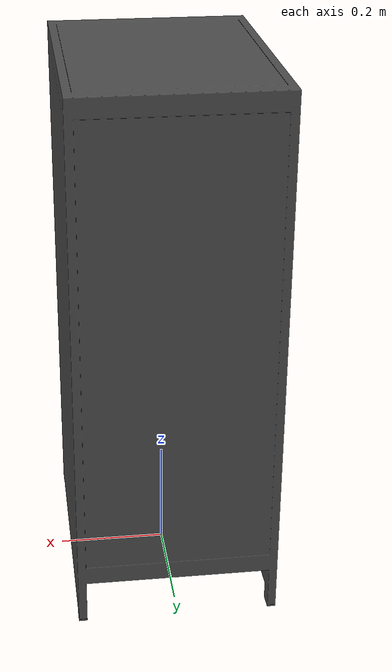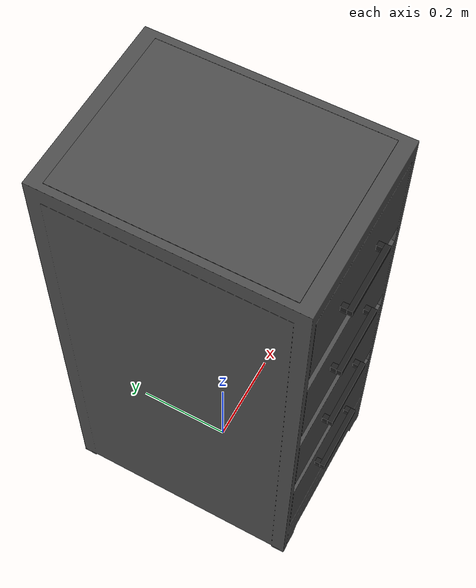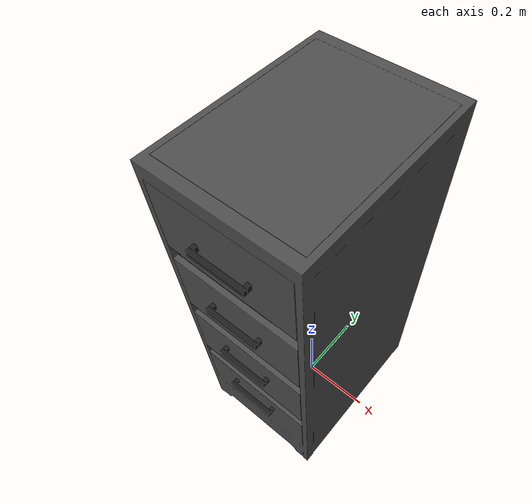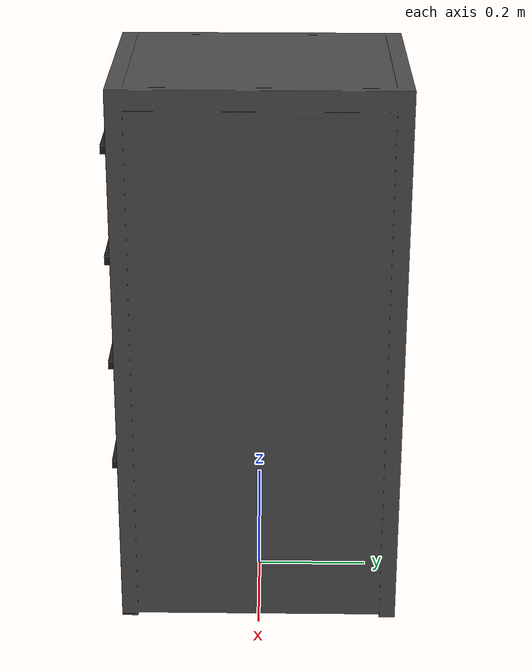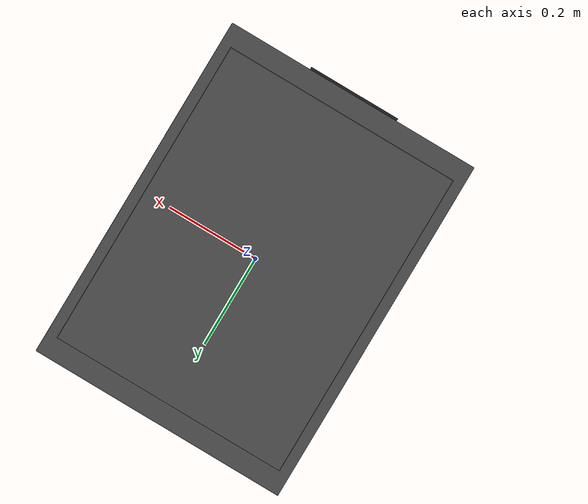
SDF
<?xml version='1.0'?>
<sdf version='1.6'>
  <model name='drawers'>
    <link name='link_0'>
      <pose frame=''>4e-06 5e-06 0 1.57 0 0</pose>
      <visual name='visual'>
        <pose frame=''>0 0 0 0 -0 0</pose>
        <geometry>
          <mesh>
            <uri>model://drawers/meshes/drawers.dae</uri>
            <scale>0.4 0.925 0.75</scale>
          </mesh>
        </geometry>
        <material>
          <lighting>1</lighting>
          <script>
            <name>Gazebo/DarkGrey</name>
            <uri>file://media/materials/scripts/gazebo.material</uri>
          </script>
          <emissive>0.06 0.06 0.06 1</emissive>
          <shader type='pixel'/>
        </material>
        <transparency>0</transparency>
        <cast_shadows>1</cast_shadows>
      </visual>
      <collision name='collision'>
        <laser_retro>0</laser_retro>
        <max_contacts>10</max_contacts>
        <pose frame=''>0 0 0 0 -0 0</pose>
        <geometry>
          <mesh>
            <uri>model://drawers/meshes/drawers.dae</uri>
            <scale>0.4 0.925 0.75</scale>
          </mesh>
        </geometry>
      </collision>
    </link>
    <static>1</static>
    <allow_auto_disable>1</allow_auto_disable>
    <include>
      <name>DoorHandle1</name>
      <uri>model://DoorHandle</uri>
      <pose>0 -0.25 0.85 -1.57 0 -1.57</pose>
    </include>
    <joint name="handle_top_joint" type="fixed">
      <child>DoorHandle1::link_2</child>
      <parent>link_1</parent>
    </joint>
    <include>
      <name>DoorHandle2</name>
      <uri>model://DoorHandle</uri>
      <pose>0 -0.25 0.65 -1.57 0 -1.57</pose>
    </include>
    <joint name="handle_top_joint" type="fixed">
      <child>DoorHandle2::link_2</child>
      <parent>link_1</parent>
    </joint>
    <include>
      <name>DoorHandle3</name>
      <uri>model://DoorHandle</uri>
      <pose>0 -0.25 0.45 -1.57 0 -1.57</pose>
    </include>
    <joint name="handle_top_joint" type="fixed">
      <child>DoorHandle3::link_2</child>
      <parent>link_1</parent>
    </joint>
    <include>
      <name>DoorHandle4</name>
      <uri>model://DoorHandle</uri>
      <pose>0 -0.25 0.25 -1.57 0 -1.57</pose>
    </include>
    <joint name="handle_top_joint" type="fixed">
      <child>DoorHandle4::link_2</child>
      <parent>link_1</parent>
    </joint>
  </model>
</sdf>

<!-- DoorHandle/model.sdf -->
<sdf version='1.6'>
  <model name='DoorHandle'>
    <link name='link_2'>
      <pose frame=''>0.013333 0 -0 0 -0 0</pose>
      <visual name='visual'>
        <pose frame=''>0 0 0 0 -0 0</pose>
        <geometry>
          <box>
            <size>0.01 0.015 0.14</size>
          </box>
        </geometry>
        <material>
          <lighting>1</lighting>
          <script>
            <name>Gazebo/Black</name>
            <uri>file://media/materials/scripts/gazebo.material</uri>
          </script>
          <shader type='pixel'>
            <normal_map>__default__</normal_map>
          </shader>
	  <ambient>0 0 0 1</ambient>
	  <specular>0 0 0 1</specular>
	  <diffuse>0 0 0 1</diffuse>
	  <emissive>0 0 0 1</emissive>
        </material>
        <transparency>0</transparency>
        <cast_shadows>1</cast_shadows>
      </visual>
      <collision name='collision'>
        <laser_retro>0</laser_retro>
        <max_contacts>10</max_contacts>
        <pose frame=''>0 0 0 0 -0 0</pose>
        <geometry>
          <box>
            <size>0.01 0.015 0.14</size>
          </box>
        </geometry>
      </collision>
    </link>
    <link name='link_4'>
      <pose frame=''>-0.006667 0 -0.065 0 -0 0</pose>
      <visual name='visual'>
        <pose frame=''>0 0 0 0 -0 0</pose>
        <geometry>
          <box>
            <size>0.03 0.015 0.01</size>
          </box>
        </geometry>
        <material>
          <lighting>1</lighting>
          <script>
            <name>Gazebo/Black</name>
            <uri>file://media/materials/scripts/gazebo.material</uri>
          </script>
          <shader type='pixel'>
            <normal_map>__default__</normal_map>
          </shader>
	  <ambient>0 0 0 1</ambient>
	  <specular>0 0 0 1</specular>
	  <diffuse>0 0 0 1</diffuse>
	  <emissive>0 0 0 1</emissive>
        </material>
        <transparency>0</transparency>
        <cast_shadows>1</cast_shadows>
      </visual>
      <collision name='collision'>
        <laser_retro>0</laser_retro>
        <max_contacts>10</max_contacts>
        <pose frame=''>0 0 0 0 -0 0</pose>
        <geometry>
          <box>
            <size>0.03 0.015 0.01</size>
          </box>
        </geometry>
      </collision>
    </link>
    <link name='link_5'>
      <pose frame=''>-0.006667 0 0.065001 0 -0 0</pose>
      <visual name='visual'>
        <pose frame=''>0 0 0 0 -0 0</pose>
        <geometry>
          <box>
            <size>0.03 0.015 0.01</size>
          </box>
        </geometry>
        <material>
          <lighting>1</lighting>
          <script>
            <name>Gazebo/Black</name>
            <uri>file://media/materials/scripts/gazebo.material</uri>
          </script>
	  <ambient>0 0 0 1</ambient>
	  <specular>0 0 0 1</specular>
	  <diffuse>0 0 0 1</diffuse>
	  <emissive>0 0 0 1</emissive>
          <shader type='pixel'>
            <normal_map>__default__</normal_map>
          </shader>
        </material>
        <transparency>0</transparency>
        <cast_shadows>1</cast_shadows>
      </visual>
      <collision name='collision'>
        <laser_retro>0</laser_retro>
        <max_contacts>10</max_contacts>
        <pose frame=''>0 0 0 0 -0 0</pose>
        <geometry>
          <box>
            <size>0.03 0.015 0.01</size>
          </box>
        </geometry>
      </collision>
    </link>
    <joint name='link_2_JOINT_2' type='fixed'>
      <parent>link_2</parent>
      <child>link_4</child>
      <pose frame=''>0 0 0 0 -0 0</pose>
    </joint>
    <joint name='link_5_JOINT_1' type='fixed'>
      <parent>link_5</parent>
      <child>link_2</child>
      <pose frame=''>0 0 0 0 -0 0</pose>
    </joint>
    <static>1</static>
    <allow_auto_disable>1</allow_auto_disable>
  </model>
</sdf>
